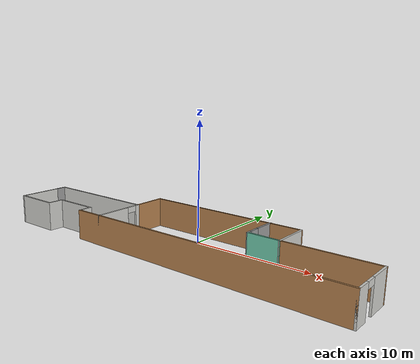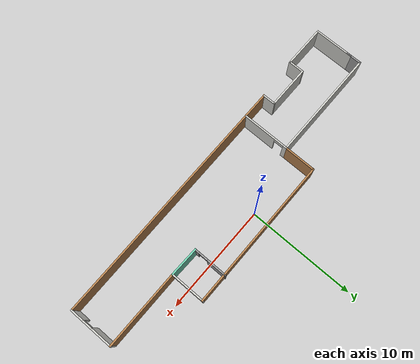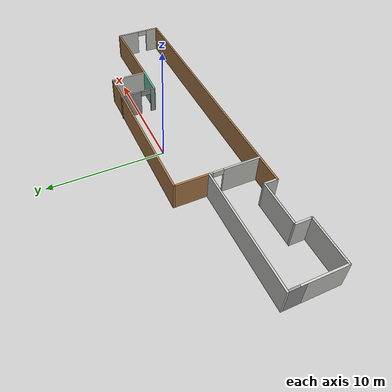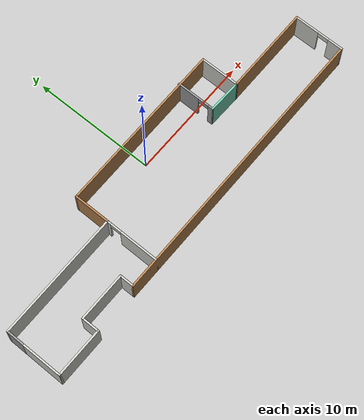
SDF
<?xml version='1.0'?>
<sdf version='1.6'>
  <model name='MyBuilding'>
    <pose frame=''>-0.135999 -2.179 0 0 -0 0</pose>
    <link name='Wall_0'>
      <collision name='Wall_0_Collision'>
        <geometry>
          <box>
            <size>3.75 0.15 2.5</size>
          </box>
        </geometry>
        <pose frame=''>0 0 1.25 0 -0 0</pose>
      </collision>
      <visual name='Wall_0_Visual'>
        <pose frame=''>0 0 1.25 0 -0 0</pose>
        <geometry>
          <box>
            <size>3.75 0.15 2.5</size>
          </box>
        </geometry>
        <material>
          <script>
            <uri>file://media/materials/scripts/gazebo.material</uri>
            <name>Gazebo/CeilingTiled</name>
          </script>
          <ambient>1 1 1 1</ambient>
        </material>
        <meta>
          <layer>0</layer>
        </meta>
      </visual>
      <pose frame=''>-15.525 -1.95962 0 0 0 -1.5708</pose>
    </link>
    <link name='Wall_1'>
      <collision name='Wall_1_Collision'>
        <geometry>
          <box>
            <size>4 0.15 2.5</size>
          </box>
        </geometry>
        <pose frame=''>0 0 1.25 0 -0 0</pose>
      </collision>
      <visual name='Wall_1_Visual'>
        <pose frame=''>0 0 1.25 0 -0 0</pose>
        <geometry>
          <box>
            <size>4 0.15 2.5</size>
          </box>
        </geometry>
        <material>
          <script>
            <uri>file://media/materials/scripts/gazebo.material</uri>
            <name>Gazebo/CeilingTiled</name>
          </script>
          <ambient>1 1 1 1</ambient>
        </material>
        <meta>
          <layer>0</layer>
        </meta>
      </visual>
      <pose frame=''>-13.6 -3.75962 0 0 -0 0</pose>
    </link>
    <link name='Wall_10'>
      <collision name='Wall_10_Collision'>
        <geometry>
          <box>
            <size>3 0.15 2.5</size>
          </box>
        </geometry>
        <pose frame=''>0 0 1.25 0 -0 0</pose>
      </collision>
      <visual name='Wall_10_Visual'>
        <pose frame=''>0 0 1.25 0 -0 0</pose>
        <geometry>
          <box>
            <size>3 0.15 2.5</size>
          </box>
        </geometry>
        <material>
          <script>
            <uri>file://media/materials/scripts/gazebo.material</uri>
            <name>Gazebo/Wood</name>
          </script>
          <ambient>1 1 1 1</ambient>
        </material>
        <meta>
          <layer>0</layer>
        </meta>
      </visual>
      <pose frame=''>-5.425 2.26539 0 0 0 -1.5708</pose>
    </link>
    <link name='Wall_11'>
      <collision name='Wall_11_Collision'>
        <geometry>
          <box>
            <size>10.25 0.15 2.5</size>
          </box>
        </geometry>
        <pose frame=''>0 0 1.25 0 -0 0</pose>
      </collision>
      <visual name='Wall_11_Visual'>
        <pose frame=''>0 0 1.25 0 -0 0</pose>
        <geometry>
          <box>
            <size>10.25 0.15 2.5</size>
          </box>
        </geometry>
        <material>
          <script>
            <uri>file://media/materials/scripts/gazebo.material</uri>
            <name>Gazebo/CeilingTiled</name>
          </script>
          <ambient>1 1 1 1</ambient>
        </material>
        <meta>
          <layer>0</layer>
        </meta>
      </visual>
      <pose frame=''>-10.475 0.840385 0 0 -0 3.14159</pose>
    </link>
    <link name='Wall_12'>
      <collision name='Wall_12_Collision'>
        <geometry>
          <box>
            <size>1.5 0.15 2.5</size>
          </box>
        </geometry>
        <pose frame=''>0 0 1.25 0 -0 0</pose>
      </collision>
      <visual name='Wall_12_Visual'>
        <pose frame=''>0 0 1.25 0 -0 0</pose>
        <geometry>
          <box>
            <size>1.5 0.15 2.5</size>
          </box>
        </geometry>
        <material>
          <script>
            <uri>file://media/materials/scripts/gazebo.material</uri>
            <name>Gazebo/Grey</name>
          </script>
          <ambient>1 1 1 1</ambient>
        </material>
        <meta>
          <layer>0</layer>
        </meta>
      </visual>
      <pose frame=''>-15.525 0.165385 0 0 0 -1.5708</pose>
    </link>
    <link name='Wall_14'>
      <pose frame=''>5.8004 2.20961 0 0 0 -1.5708</pose>
      <visual name='Wall_14_Visual_0'>
        <pose frame=''>-0.679744 0 1.25 0 -0 0</pose>
        <geometry>
          <box>
            <size>1.89051 0.15 2.5</size>
          </box>
        </geometry>
        <material>
          <script>
            <uri>file://media/materials/scripts/gazebo.material</uri>
            <name>Gazebo/Grey</name>
          </script>
          <ambient>1 1 1 1</ambient>
        </material>
        <meta>
          <layer>0</layer>
        </meta>
      </visual>
      <collision name='Wall_14_Collision_0'>
        <geometry>
          <box>
            <size>1.89051 0.15 2.5</size>
          </box>
        </geometry>
        <pose frame=''>-0.679744 0 1.25 0 -0 0</pose>
      </collision>
      <visual name='Wall_14_Visual_1'>
        <pose frame=''>1.39526 0 1.25 0 -0 0</pose>
        <geometry>
          <box>
            <size>0.459488 0.15 2.5</size>
          </box>
        </geometry>
        <material>
          <script>
            <uri>file://media/materials/scripts/gazebo.material</uri>
            <name>Gazebo/Grey</name>
          </script>
          <ambient>1 1 1 1</ambient>
        </material>
        <meta>
          <layer>0</layer>
        </meta>
      </visual>
      <collision name='Wall_14_Collision_1'>
        <geometry>
          <box>
            <size>0.459488 0.15 2.5</size>
          </box>
        </geometry>
        <pose frame=''>1.39526 0 1.25 0 -0 0</pose>
      </collision>
      <visual name='Wall_14_Visual_2'>
        <pose frame=''>0.715512 0 2.25 0 -0 0</pose>
        <geometry>
          <box>
            <size>0.9 0.15 0.5</size>
          </box>
        </geometry>
        <material>
          <script>
            <uri>file://media/materials/scripts/gazebo.material</uri>
            <name>Gazebo/Grey</name>
          </script>
          <ambient>1 1 1 1</ambient>
        </material>
        <meta>
          <layer>0</layer>
        </meta>
      </visual>
      <collision name='Wall_14_Collision_2'>
        <geometry>
          <box>
            <size>0.9 0.15 0.5</size>
          </box>
        </geometry>
        <pose frame=''>0.715512 0 2.25 0 -0 0</pose>
      </collision>
    </link>
    <link name='Wall_15'>
      <collision name='Wall_15_Collision'>
        <geometry>
          <box>
            <size>2.77551 0.15 2.5</size>
          </box>
        </geometry>
        <pose frame=''>0 0 1.25 0 -0 0</pose>
      </collision>
      <visual name='Wall_15_Visual'>
        <pose frame=''>0 0 1.25 0 -0 0</pose>
        <geometry>
          <box>
            <size>2.77551 0.15 2.5</size>
          </box>
        </geometry>
        <material>
          <script>
            <uri>file://media/materials/scripts/gazebo.material</uri>
            <name>Gazebo/Grey</name>
          </script>
          <ambient>0.435294 0.796078 0.67451 1</ambient>
        </material>
        <meta>
          <layer>0</layer>
        </meta>
      </visual>
      <pose frame=''>7.1127 0.625 0 0 0 -0.026371</pose>
    </link>
    <link name='Wall_18'>
      <pose frame=''>-5.425 -1.33462 0 0 0 -1.5708</pose>
      <visual name='Wall_18_Visual_0'>
        <pose frame=''>-2.05639 0 1.25 0 -0 0</pose>
        <geometry>
          <box>
            <size>0.387227 0.15 2.5</size>
          </box>
        </geometry>
        <material>
          <script>
            <uri>file://media/materials/scripts/gazebo.material</uri>
            <name>Gazebo/CeilingTiled</name>
          </script>
          <ambient>0.435294 0.796078 0.67451 1</ambient>
        </material>
        <meta>
          <layer>0</layer>
        </meta>
      </visual>
      <collision name='Wall_18_Collision_0'>
        <geometry>
          <box>
            <size>0.387227 0.15 2.5</size>
          </box>
        </geometry>
        <pose frame=''>-2.05639 0 1.25 0 -0 0</pose>
      </collision>
      <visual name='Wall_18_Visual_1'>
        <pose frame=''>0.643614 0 1.25 0 -0 0</pose>
        <geometry>
          <box>
            <size>3.21277 0.15 2.5</size>
          </box>
        </geometry>
        <material>
          <script>
            <uri>file://media/materials/scripts/gazebo.material</uri>
            <name>Gazebo/CeilingTiled</name>
          </script>
          <ambient>0.435294 0.796078 0.67451 1</ambient>
        </material>
        <meta>
          <layer>0</layer>
        </meta>
      </visual>
      <collision name='Wall_18_Collision_1'>
        <geometry>
          <box>
            <size>3.21277 0.15 2.5</size>
          </box>
        </geometry>
        <pose frame=''>0.643614 0 1.25 0 -0 0</pose>
      </collision>
      <visual name='Wall_18_Visual_2'>
        <pose frame=''>-1.41277 0 2.25 0 -0 0</pose>
        <geometry>
          <box>
            <size>0.9 0.15 0.5</size>
          </box>
        </geometry>
        <material>
          <script>
            <uri>file://media/materials/scripts/gazebo.material</uri>
            <name>Gazebo/CeilingTiled</name>
          </script>
          <ambient>0.435294 0.796078 0.67451 1</ambient>
        </material>
        <meta>
          <layer>0</layer>
        </meta>
      </visual>
      <collision name='Wall_18_Collision_2'>
        <geometry>
          <box>
            <size>0.9 0.15 0.5</size>
          </box>
        </geometry>
        <pose frame=''>-1.41277 0 2.25 0 -0 0</pose>
      </collision>
    </link>
    <link name='Wall_2'>
      <collision name='Wall_2_Collision'>
        <geometry>
          <box>
            <size>1.5 0.15 2.5</size>
          </box>
        </geometry>
        <pose frame=''>0 0 1.25 0 -0 0</pose>
      </collision>
      <visual name='Wall_2_Visual'>
        <pose frame=''>0 0 1.25 0 -0 0</pose>
        <geometry>
          <box>
            <size>1.5 0.15 2.5</size>
          </box>
        </geometry>
        <material>
          <script>
            <uri>file://media/materials/scripts/gazebo.material</uri>
            <name>Gazebo/CeilingTiled</name>
          </script>
          <ambient>1 1 1 1</ambient>
        </material>
        <meta>
          <layer>0</layer>
        </meta>
      </visual>
      <pose frame=''>-11.675 -3.08461 0 0 -0 1.5708</pose>
    </link>
    <link name='Wall_3'>
      <collision name='Wall_3_Collision'>
        <geometry>
          <box>
            <size>4 0.15 2.5</size>
          </box>
        </geometry>
        <pose frame=''>0 0 1.25 0 -0 0</pose>
      </collision>
      <visual name='Wall_3_Visual'>
        <pose frame=''>0 0 1.25 0 -0 0</pose>
        <geometry>
          <box>
            <size>4 0.15 2.5</size>
          </box>
        </geometry>
        <material>
          <script>
            <uri>file://media/materials/scripts/gazebo.material</uri>
            <name>Gazebo/CeilingTiled</name>
          </script>
          <ambient>1 1 1 1</ambient>
        </material>
        <meta>
          <layer>0</layer>
        </meta>
      </visual>
      <pose frame=''>-9.75 -2.40962 0 0 -0 0</pose>
    </link>
    <link name='Wall_4'>
      <collision name='Wall_4_Collision'>
        <geometry>
          <box>
            <size>1.25 0.15 2.5</size>
          </box>
        </geometry>
        <pose frame=''>0 0 1.25 0 -0 0</pose>
      </collision>
      <visual name='Wall_4_Visual'>
        <pose frame=''>0 0 1.25 0 -0 0</pose>
        <geometry>
          <box>
            <size>1.25 0.15 2.5</size>
          </box>
        </geometry>
        <material>
          <script>
            <uri>file://media/materials/scripts/gazebo.material</uri>
            <name>Gazebo/CeilingTiled</name>
          </script>
          <ambient>1 1 1 1</ambient>
        </material>
        <meta>
          <layer>0</layer>
        </meta>
      </visual>
      <pose frame=''>-7.825 -2.95961 0 0 0 -1.5708</pose>
    </link>
    <link name='Wall_5'>
      <collision name='Wall_5_Collision'>
        <geometry>
          <box>
            <size>23.5 0.15 2.5</size>
          </box>
        </geometry>
        <pose frame=''>0 0 1.25 0 -0 0</pose>
      </collision>
      <visual name='Wall_5_Visual'>
        <pose frame=''>0 0 1.25 0 -0 0</pose>
        <geometry>
          <box>
            <size>23.5 0.15 2.5</size>
          </box>
        </geometry>
        <material>
          <script>
            <uri>file://media/materials/scripts/gazebo.material</uri>
            <name>Gazebo/Wood</name>
          </script>
          <ambient>1 1 1 1</ambient>
        </material>
        <meta>
          <layer>0</layer>
        </meta>
      </visual>
      <pose frame=''>3.85 -3.50962 0 0 -0 0</pose>
    </link>
    <link name='Wall_6'>
      <pose frame=''>15.525 -1.45962 0 0 -0 1.5708</pose>
      <visual name='Wall_6_Visual_0'>
        <pose frame=''>-1.48955 0 1.25 0 -0 0</pose>
        <geometry>
          <box>
            <size>1.2709 0.15 2.5</size>
          </box>
        </geometry>
        <material>
          <script>
            <uri>file://media/materials/scripts/gazebo.material</uri>
            <name>Gazebo/CeilingTiled</name>
          </script>
          <ambient>1 1 1 1</ambient>
        </material>
        <meta>
          <layer>0</layer>
        </meta>
      </visual>
      <collision name='Wall_6_Collision_0'>
        <geometry>
          <box>
            <size>1.2709 0.15 2.5</size>
          </box>
        </geometry>
        <pose frame=''>-1.48955 0 1.25 0 -0 0</pose>
      </collision>
      <visual name='Wall_6_Visual_1'>
        <pose frame=''>1.08545 0 1.25 0 -0 0</pose>
        <geometry>
          <box>
            <size>2.0791 0.15 2.5</size>
          </box>
        </geometry>
        <material>
          <script>
            <uri>file://media/materials/scripts/gazebo.material</uri>
            <name>Gazebo/CeilingTiled</name>
          </script>
          <ambient>1 1 1 1</ambient>
        </material>
        <meta>
          <layer>0</layer>
        </meta>
      </visual>
      <collision name='Wall_6_Collision_1'>
        <geometry>
          <box>
            <size>2.0791 0.15 2.5</size>
          </box>
        </geometry>
        <pose frame=''>1.08545 0 1.25 0 -0 0</pose>
      </collision>
      <visual name='Wall_6_Visual_2'>
        <pose frame=''>-0.404095 0 2.25 0 -0 0</pose>
        <geometry>
          <box>
            <size>0.9 0.15 0.5</size>
          </box>
        </geometry>
        <material>
          <script>
            <uri>file://media/materials/scripts/gazebo.material</uri>
            <name>Gazebo/CeilingTiled</name>
          </script>
          <ambient>1 1 1 1</ambient>
        </material>
        <meta>
          <layer>0</layer>
        </meta>
      </visual>
      <collision name='Wall_6_Collision_2'>
        <geometry>
          <box>
            <size>0.9 0.15 0.5</size>
          </box>
        </geometry>
        <pose frame=''>-0.404095 0 2.25 0 -0 0</pose>
      </collision>
    </link>
    <link name='Wall_7'>
      <collision name='Wall_7_Collision'>
        <geometry>
          <box>
            <size>7.25 0.15 2.5</size>
          </box>
        </geometry>
        <pose frame=''>0 0 1.25 0 -0 0</pose>
      </collision>
      <visual name='Wall_7_Visual'>
        <pose frame=''>0 0 1.25 0 -0 0</pose>
        <geometry>
          <box>
            <size>7.25 0.15 2.5</size>
          </box>
        </geometry>
        <material>
          <script>
            <uri>file://media/materials/scripts/gazebo.material</uri>
            <name>Gazebo/Wood</name>
          </script>
          <ambient>1 1 1 1</ambient>
        </material>
        <meta>
          <layer>0</layer>
        </meta>
      </visual>
      <pose frame=''>11.975 0.590385 0 0 -0 3.14159</pose>
    </link>
    <link name='Wall_8'>
      <collision name='Wall_8_Collision'>
        <geometry>
          <box>
            <size>3.25 0.15 2.5</size>
          </box>
        </geometry>
        <pose frame=''>0 0 1.25 0 -0 0</pose>
      </collision>
      <visual name='Wall_8_Visual'>
        <pose frame=''>0 0 1.25 0 -0 0</pose>
        <geometry>
          <box>
            <size>3.25 0.15 2.5</size>
          </box>
        </geometry>
        <material>
          <script>
            <uri>file://media/materials/scripts/gazebo.material</uri>
            <name>Gazebo/CeilingTiled</name>
          </script>
          <ambient>1 1 1 1</ambient>
        </material>
        <meta>
          <layer>0</layer>
        </meta>
      </visual>
      <pose frame=''>8.425 2.14039 0 0 -0 1.5708</pose>
    </link>
    <link name='Wall_9'>
      <collision name='Wall_9_Collision'>
        <geometry>
          <box>
            <size>14 0.15 2.5</size>
          </box>
        </geometry>
        <pose frame=''>0 0 1.25 0 -0 0</pose>
      </collision>
      <visual name='Wall_9_Visual'>
        <pose frame=''>0 0 1.25 0 -0 0</pose>
        <geometry>
          <box>
            <size>14 0.15 2.5</size>
          </box>
        </geometry>
        <material>
          <script>
            <uri>file://media/materials/scripts/gazebo.material</uri>
            <name>Gazebo/Wood</name>
          </script>
          <ambient>1 1 1 1</ambient>
        </material>
        <meta>
          <layer>0</layer>
        </meta>
      </visual>
      <pose frame=''>1.5 3.69039 0 0 -0 3.14159</pose>
    </link>
    <static>1</static>
  </model>
</sdf>
